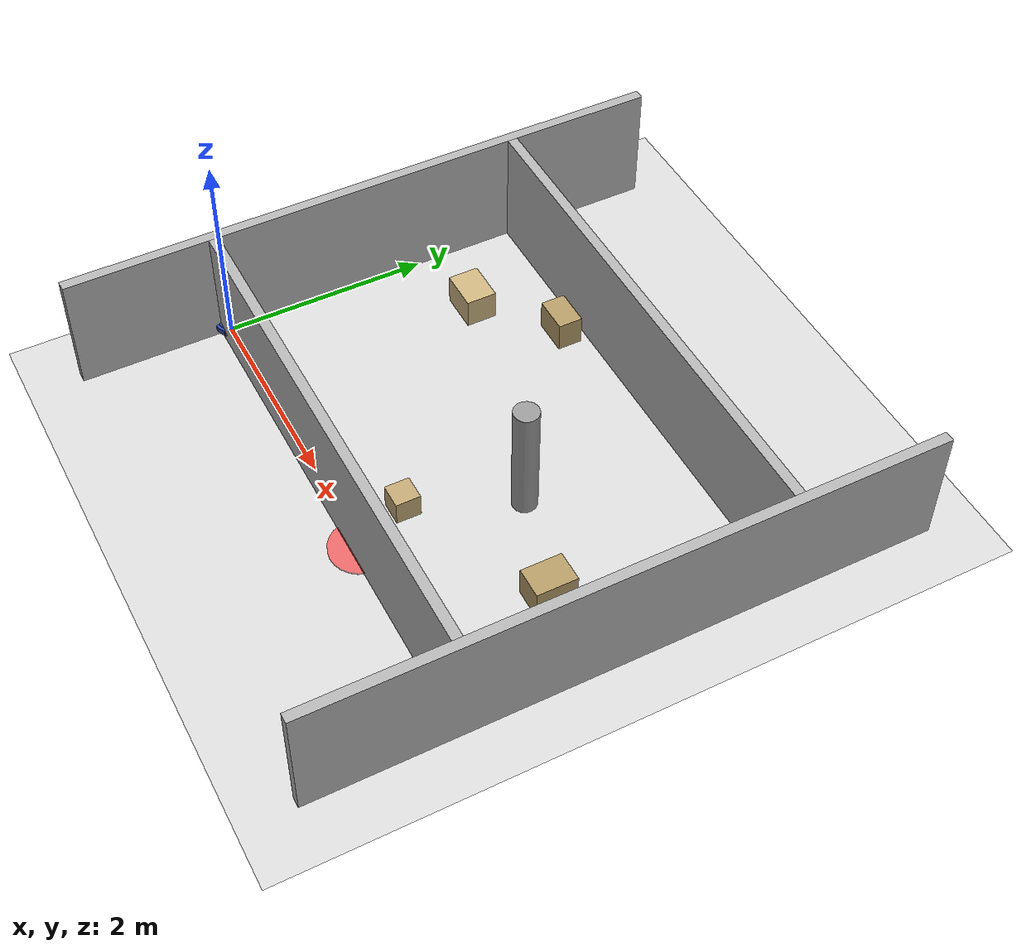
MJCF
<mujoco model="lab_cluttered">
  <include file="../assets/lekiwi_base.xml"/>

  <worldbody>
    <!-- Room: 5m × 6m -->
    <geom name="wall_north" type="box" size="2.5 0.05 0.6" pos="2.5 3.05 0.6" rgba="0.7 0.7 0.7 1"/>
    <geom name="wall_south" type="box" size="2.5 0.05 0.6" pos="2.5 -0.05 0.6" rgba="0.7 0.7 0.7 1"/>
    <geom name="wall_east"  type="box" size="0.05 3.0 0.6" pos="5.05 1.5 0.6" rgba="0.7 0.7 0.7 1"/>
    <geom name="wall_west"  type="box" size="0.05 3.0 0.6" pos="-0.05 1.5 0.6" rgba="0.7 0.7 0.7 1"/>

    <!-- Desk area -->
    <body name="desk_1" pos="1.5 0.8 0.375">
      <include file="../assets/table.xml"/>
    </body>
    <body name="desk_2" pos="3.5 2.4 0.375">
      <include file="../assets/table.xml"/>
    </body>

    <!-- Chairs -->
    <body name="chair_1" pos="1.2 1.5 0.45">
      <include file="../assets/chair.xml"/>
    </body>
    <body name="chair_2" pos="3.8 0.9 0.45">
      <include file="../assets/chair.xml"/>
    </body>
    <body name="chair_3" pos="2.5 1.8 0.45">
      <include file="../assets/chair.xml"/>
    </body>

    <!-- Scattered boxes -->
    <body name="box_1" pos="0.8 2.2 0.15">
      <geom name="b1" type="box" size="0.2 0.15 0.15" rgba="0.8 0.7 0.5 1" mass="1.5"/>
      <freejoint/>
    </body>
    <body name="box_2" pos="4.2 1.2 0.15">
      <geom name="b2" type="box" size="0.15 0.2 0.15" rgba="0.7 0.6 0.4 1" mass="1.5"/>
      <freejoint/>
    </body>
    <body name="box_3" pos="2.8 0.5 0.15">
      <geom name="b3" type="box" size="0.12 0.12 0.12" rgba="0.75 0.65 0.45 1" mass="1.0"/>
      <freejoint/>
    </body>
    <body name="box_4" pos="1.5 2.8 0.15">
      <geom name="b4" type="box" size="0.18 0.12 0.15" rgba="0.7 0.6 0.4 1" mass="1.2"/>
      <freejoint/>
    </body>

    <!-- A pillar / column -->
    <body name="pillar" pos="3.2 1.5 0.6">
      <geom name="pillar_geom" type="cylinder" size="0.12 0.6" rgba="0.6 0.6 0.6 1" mass="20"/>
      <freejoint/>
    </body>
  </worldbody>
</mujoco>

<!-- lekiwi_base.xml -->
<mujoco model="lekiwi_base">
  <compiler angle="degree" meshdir="assets"/>

  <option timestep="0.005" gravity="0 0 -9.81">
    <flag contact="enable" gravity="enable"/>
  </option>

  <default>
    <geom type="cylinder" density="500" friction="0.6 0.3 0.3" condim="3"/>
    <joint type="hinge" armature="0.001" damping="0.01"/>
    <default class="floor">
      <geom type="plane" size="10 10 0.1" rgba="0.85 0.85 0.85 1"/>
    </default>
    <default class="wall">
      <geom type="box" rgba="0.7 0.7 0.7 1" density="1000"/>
    </default>
  </default>

  <!-- ====== World floor ====== -->
  <worldbody>
    <geom class="floor" pos="0 0 0"/>
    <light directional="true" pos="4 0 8" dir="0 0 -1" diffuse="0.9 0.9 0.9"/>
    <light directional="true" pos="-4 4 6" dir="0 0 -1" diffuse="0.3 0.3 0.3"/>

    <!-- ====== LeKiwi omnidirectional base ====== -->
    <body name="lekiwi_base" pos="0 0 0.06">
      <!-- Chassis: flat cylinder, radius 0.15m, height 0.06m -->
      <geom name="chassis_body" type="cylinder" size="0.15 0.03"
            pos="0 0 0.03" rgba="0.2 0.3 0.7 1" mass="2.5"/>
      <!-- Top plate marker -->
      <geom name="chassis_top" type="cylinder" size="0.12 0.005"
            pos="0 0 0.065" rgba="0.3 0.4 0.8 1" mass="0.1"/>

      <!-- Front direction indicator -->
      <geom name="front_marker" type="box" size="0.03 0.01 0.01"
            pos="0.13 0 0.07" rgba="1 0.5 0 1" mass="0.01"/>

      <!-- 3 omniwheels at 150°, -90°, 30° from forward -->
      <!-- Wheel 1: left-rear (150° / 5π/6) -->
      <body name="wheel_1" pos="0.108 -0.0625 0.025">
        <joint name="wheel_1_joint" type="hinge" axis="0 1 0"/>
        <geom name="wheel_1_geom" type="cylinder" size="0.05 0.012"
              pos="0 0 0" rgba="0.2 0.2 0.2 1" mass="0.08"/>
        <geom name="roller_1" type="sphere" size="0.008" pos="0.05 0 0"
              rgba="0.5 0.5 0.5 1" mass="0.005"/>
      </body>

      <!-- Wheel 2: back (-90° / -π/2) -->
      <body name="wheel_2" pos="0 0.125 0.025">
        <joint name="wheel_2_joint" type="hinge" axis="1 0 0"/>
        <geom name="wheel_2_geom" type="cylinder" size="0.05 0.012"
              pos="0 0 0" rgba="0.2 0.2 0.2 1" mass="0.08"/>
        <geom name="roller_2" type="sphere" size="0.008" pos="0.05 0 0"
              rgba="0.5 0.5 0.5 1" mass="0.005"/>
      </body>

      <!-- Wheel 3: right-front (30° / π/6) -->
      <body name="wheel_3" pos="0.108 0.0625 0.025">
        <joint name="wheel_3_joint" type="hinge" axis="-1 0 0"/>
        <geom name="wheel_3_geom" type="cylinder" size="0.05 0.012"
              pos="0 0 0" rgba="0.2 0.2 0.2 1" mass="0.08"/>
        <geom name="roller_3" type="sphere" size="0.008" pos="0.05 0 0"
              rgba="0.5 0.5 0.5 1" mass="0.005"/>
      </body>

      <!-- D435i camera mount point (referenced by d435i_mount.xml) -->
      <site name="camera_mount" pos="0.10 0 0.08" euler="0 -15 0" size="0.01"/>
    </body>

    <!-- ====== Goal marker ====== -->
    <body name="goal_marker" pos="3 0 0.02" mocap="true">
      <geom name="goal_geom" type="cylinder" size="0.3 0.01"
            rgba="1 0 0 0.5" mass="0"/>
      <site name="goal_site" pos="0 0 0.02" size="0.05"/>
    </body>
  </worldbody>

  <!-- ====== Actuators ====== -->
  <actuator>
    <motor name="motor_1" joint="wheel_1_joint" ctrlrange="-30 30" gear="1"/>
    <motor name="motor_2" joint="wheel_2_joint" ctrlrange="-30 30" gear="1"/>
    <motor name="motor_3" joint="wheel_3_joint" ctrlrange="-30 30" gear="1"/>
  </actuator>

  <!-- ====== Sensors ====== -->
  <sensor>
    <!-- Robot position & orientation -->
    <framepos name="robot_pos" objtype="body" objname="lekiwi_base"/>
    <framequat name="robot_quat" objtype="body" objname="lekiwi_base"/>
    <framelinvel name="robot_linvel" objtype="body" objname="lekiwi_base"/>
    <frameangvel name="robot_angvel" objtype="body" objname="lekiwi_base"/>
    <!-- Goal relative position -->
    <framepos name="goal_pos" objtype="body" objname="goal_marker"/>
    <!-- Wheel velocities -->
    <actuatorfrc name="actuator_force_1" actuator="motor_1"/>
    <actuatorfrc name="actuator_force_2" actuator="motor_2"/>
    <actuatorfrc name="actuator_force_3" actuator="motor_3"/>
  </sensor>
</mujoco>

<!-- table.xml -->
<mujoco model="table">
  <!-- Standard lab table: 1.2m × 0.6m × 0.75m -->
  <worldbody>
    <body name="table" pos="0 0 0.375">
      <!-- Tabletop -->
      <geom name="table_top" type="box" size="0.6 0.3 0.025" pos="0 0 0.375"
            rgba="0.75 0.65 0.5 1" mass="15"/>
      <!-- Legs -->
      <geom name="leg_1" type="cylinder" size="0.025 0.36" pos="0.55 0.25 0.01" rgba="0.5 0.4 0.3 1" mass="2"/>
      <geom name="leg_2" type="cylinder" size="0.025 0.36" pos="-0.55 0.25 0.01" rgba="0.5 0.4 0.3 1" mass="2"/>
      <geom name="leg_3" type="cylinder" size="0.025 0.36" pos="0.55 -0.25 0.01" rgba="0.5 0.4 0.3 1" mass="2"/>
      <geom name="leg_4" type="cylinder" size="0.025 0.36" pos="-0.55 -0.25 0.01" rgba="0.5 0.4 0.3 1" mass="2"/>
      <freejoint/>
    </body>
  </worldbody>
</mujoco>

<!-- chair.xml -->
<mujoco model="chair">
  <!-- Lab chair: ~0.45m × 0.45m × 0.9m -->
  <worldbody>
    <body name="chair" pos="0 0 0.45">
      <geom name="seat" type="box" size="0.2 0.2 0.02" pos="0 0 0.43"
            rgba="0.3 0.3 0.4 1" mass="3"/>
      <geom name="back" type="box" size="0.2 0.02 0.25" pos="0 -0.18 0.65"
            rgba="0.25 0.25 0.35 1" mass="2"/>
      <!-- Legs -->
      <geom name="cleg_1" type="cylinder" size="0.015 0.42" pos="0.17 0.17 0.21" rgba="0.2 0.2 0.2 1" mass="1"/>
      <geom name="cleg_2" type="cylinder" size="0.015 0.42" pos="-0.17 0.17 0.21" rgba="0.2 0.2 0.2 1" mass="1"/>
      <geom name="cleg_3" type="cylinder" size="0.015 0.42" pos="0.17 -0.17 0.21" rgba="0.2 0.2 0.2 1" mass="1"/>
      <geom name="cleg_4" type="cylinder" size="0.015 0.42" pos="-0.17 -0.17 0.21" rgba="0.2 0.2 0.2 1" mass="1"/>
      <freejoint/>
    </body>
  </worldbody>
</mujoco>
